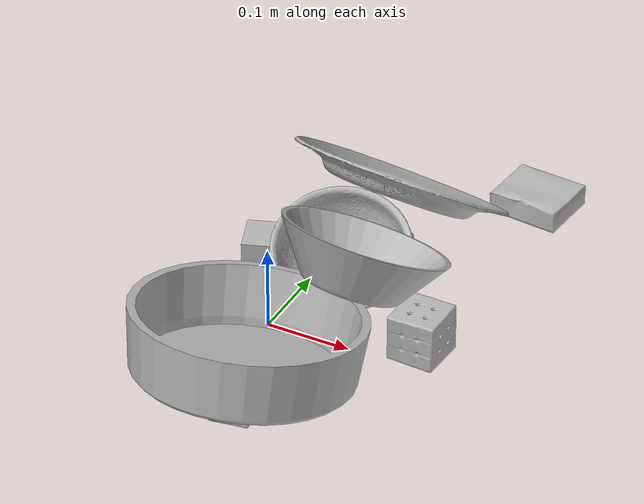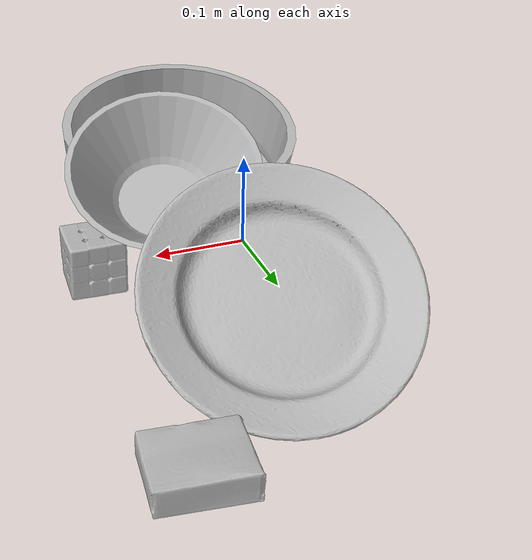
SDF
<sdf version="1.4">
  <world name="default">
    <light name="light1" type="point">
      <pose>0 0 1 0 0 0</pose>
      <diffuse>3 3 3 1</diffuse>
      <specular>3 3 3 1</specular>
    </light>
    <light name="light2" type="point">
      <pose>0 0.5 2 0 0 0</pose>
      <diffuse>1 1 1 1</diffuse>
      <specular>1 1 1 1</specular>
    </light>
    <light name="light3" type="point">
      <pose>0 0.5 2 0 0 0</pose>
      <diffuse>3 3 3 1</diffuse>
      <specular>3 3 3 1</specular>
    </light>
    <scene>
      <ambient>0.7 0.7 0.7</ambient>
    </scene>
    <model name="box1">
      <link name="link_box1">
        <collision name="default">
          <geometry>
            <mesh>
              <uri>model://sugar_box/collision_meshes/collision.obj</uri>
              <scale>0.5 0.5 0.5</scale>
            </mesh>
          </geometry>
          <surface>
            <friction>
              <ode>
                <mu>0.5</mu>
                <mu2>0.5</mu2>
              </ode>
            </friction>
          <contact>
        <ode>
            <max_vel>0</max_vel>
            <min_depth>0.0001</min_depth>
            <kp>1e8</kp>
        </ode>
    </contact></surface>
        </collision>
        <visual name="default">
          <geometry>
            <mesh>
              <uri>model://sugar_box/visual_meshes/visual.dae</uri>
              <scale>0.5 0.5 0.5</scale>
            </mesh>
          </geometry>
        </visual>
        <inertial>
          <mass>0.05968111753463745</mass>
          <pose>0.0005171863595023751 1.924554817378521e-05 -0.00018182402709499002 -0.00040462627153530444 0.0010506635220302928 0.002615378323275012</pose>
          <inertia>
            <ixx>1.2431535e-05</ixx>
            <iyy>4.0181283e-05</iyy>
            <izz>4.8101785e-05</izz>
            <ixy>0</ixy>
            <ixz>0</ixz>
            <iyz>0</iyz>
          </inertia>
        </inertial>
      </link>
      <pose>0.046940043568611145 -0.14634791016578674 0.015257083810865879 -0.00018556475415955315 0.09138209609689585 1.7193216520210175</pose>
    </model>
    <model name="box11">
      <link name="link_box11">
        <collision name="default">
          <geometry>
            <mesh>
              <uri>model://cracker_box/collision_meshes/collision.obj</uri>
              <scale>0.25 0.25 0.25</scale>
            </mesh>
          </geometry>
          <surface>
            <friction>
              <ode>
                <mu>0.5</mu>
                <mu2>0.5</mu2>
              </ode>
            </friction>
          <contact>
        <ode>
            <max_vel>0</max_vel>
            <min_depth>0.0001</min_depth>
            <kp>1e8</kp>
        </ode>
    </contact></surface>
        </collision>
        <visual name="default">
          <geometry>
            <mesh>
              <uri>model://cracker_box/visual_meshes/visual.dae</uri>
              <scale>0.25 0.25 0.25</scale>
            </mesh>
          </geometry>
        </visual>
        <inertial>
          <mass>0.04741516709327698</mass>
          <pose>0.0002366035187151283 6.358561950037256e-05 -0.0004257383698131889 -0.00031620780351981393 -0.01110649053153066 0.0025467950031323855</pose>
          <inertia>
            <ixx>7.537689e-06</ixx>
            <iyy>1.2446206e-05</iyy>
            <izz>1.7761875e-05</izz>
            <ixy>0</ixy>
            <ixz>0</ixz>
            <iyz>0</iyz>
          </inertia>
        </inertial>
      </link>
      <pose>0.04324706643819809 0.20369847118854523 0.009096325375139713 -0.014095039096380347 -0.005010213634094623 2.7485877513181127</pose>
    </model>
    <model name="box2">
      <link name="link_box2">
        <collision name="default">
          <geometry>
            <mesh>
              <uri>model://jenga/collision_meshes/collision.obj</uri>
              <scale>1.0 1.0 1.0</scale>
            </mesh>
          </geometry>
          <surface>
            <friction>
              <ode>
                <mu>0.5</mu>
                <mu2>0.5</mu2>
              </ode>
            </friction>
          <contact>
        <ode>
            <max_vel>0</max_vel>
            <min_depth>0.0001</min_depth>
            <kp>1e8</kp>
        </ode>
    </contact></surface>
        </collision>
        <visual name="default">
          <geometry>
            <mesh>
              <uri>model://jenga/visual_meshes/visual.dae</uri>
              <scale>1.0 1.0 1.0</scale>
            </mesh>
          </geometry>
        </visual>
        <inertial>
          <mass>0.17569443583488464</mass>
          <pose>-2.502855807051674e-07 -0.00010250010382151231 -4.0923401684267446e-05 0.0 -7.342153480750062e-07 0.0</pose>
          <inertia>
            <ixx>4.8618913e-05</ixx>
            <iyy>0.00032944046</iyy>
            <izz>0.0003517057</izz>
            <ixy>0</ixy>
            <ixz>0</ixz>
            <iyz>0</iyz>
          </inertia>
        </inertial>
      </link>
      <pose>-0.019529229030013084 0.13413450121879578 0.015002477914094925 -3.603812271118784e-05 -1.270964795741385e-05 -2.7917570299632697</pose>
    </model>
    <model name="box21">
      <link name="link_box21">
        <collision name="default">
          <geometry>
            <mesh>
              <uri>model://rubiks_cube/collision_meshes/collision.obj</uri>
              <scale>1.0 1.0 1.0</scale>
            </mesh>
          </geometry>
          <surface>
            <friction>
              <ode>
                <mu>0.5</mu>
                <mu2>0.5</mu2>
              </ode>
            </friction>
          <contact>
        <ode>
            <max_vel>0</max_vel>
            <min_depth>0.0001</min_depth>
            <kp>1e8</kp>
        </ode>
    </contact></surface>
        </collision>
        <visual name="default">
          <geometry>
            <mesh>
              <uri>model://rubiks_cube/visual_meshes/visual.dae</uri>
              <scale>1.0 1.0 1.0</scale>
            </mesh>
          </geometry>
        </visual>
        <inertial>
          <mass>0.16427944600582123</mass>
          <pose>2.6721041649580002e-05 5.2569666877388954e-05 -7.2643156272533815e-06 -0.05467299197426534 -0.0981400693449792 -0.034455479534688374</pose>
          <inertia>
            <ixx>9.0775415e-05</ixx>
            <iyy>9.0352085e-05</iyy>
            <izz>9.152764e-05</izz>
            <ixy>0</ixy>
            <ixz>0</ixz>
            <iyz>0</iyz>
          </inertia>
        </inertial>
      </link>
      <pose>0.17430180311203003 0.03139157593250275 0.028678834438323975 5.627199710684473e-05 5.8814271879162714e-05 3.1192356793171023</pose>
    </model>
    <model name="box3">
      <link name="link_box3">
        <collision name="default">
          <geometry>
            <mesh>
              <uri>model://gelatin_box/collision_meshes/collision.obj</uri>
              <scale>1.0 1.0 1.0</scale>
            </mesh>
          </geometry>
          <surface>
            <friction>
              <ode>
                <mu>0.5</mu>
                <mu2>0.5</mu2>
              </ode>
            </friction>
          <contact>
        <ode>
            <max_vel>0</max_vel>
            <min_depth>0.0001</min_depth>
            <kp>1e8</kp>
        </ode>
    </contact></surface>
        </collision>
        <visual name="default">
          <geometry>
            <mesh>
              <uri>model://gelatin_box/visual_meshes/visual.dae</uri>
              <scale>1.0 1.0 1.0</scale>
            </mesh>
          </geometry>
        </visual>
        <inertial>
          <mass>0.21197354793548584</mass>
          <pose>0.0004319618456065655 0.00011156872642459348 -0.0003640321083366871 -0.0010503719594585892 -0.004755818227500045 0.016440553882781303</pose>
          <inertia>
            <ixx>0.00014963602</ixx>
            <iyy>0.00010688423</iyy>
            <izz>0.00022777937</izz>
            <ixy>0</ixy>
            <ixz>0</ixz>
            <iyz>0</iyz>
          </inertia>
        </inertial>
      </link>
      <pose>0.16912057995796204 0.3460672199726105 0.015168312005698681 0.005597473464215974 -0.007304545211528524 -1.6777966226021184</pose>
    </model>
    <model name="box31">
      <link name="link_box31">
        <collision name="default">
          <geometry>
            <mesh>
              <uri>model://pudding_box/collision_meshes/collision.obj</uri>
              <scale>0.5 0.5 0.5</scale>
            </mesh>
          </geometry>
          <surface>
            <friction>
              <ode>
                <mu>0.5</mu>
                <mu2>0.5</mu2>
              </ode>
            </friction>
          <contact>
        <ode>
            <max_vel>0</max_vel>
            <min_depth>0.0001</min_depth>
            <kp>1e8</kp>
        </ode>
    </contact></surface>
        </collision>
        <visual name="default">
          <geometry>
            <mesh>
              <uri>model://pudding_box/visual_meshes/visual.dae</uri>
              <scale>0.5 0.5 0.5</scale>
            </mesh>
          </geometry>
        </visual>
        <inertial>
          <mass>0.056796859949827194</mass>
          <pose>0.00024474109522998333 0.0004033942532259971 -0.0002594413817860186 0.005213102251005844 -0.00660379641961884 0.02007983447872704</pose>
          <inertia>
            <ixx>1.605148e-05</ixx>
            <iyy>1.0799551e-05</iyy>
            <izz>2.3704206e-05</izz>
            <ixy>0</ixy>
            <ixz>0</ixz>
            <iyz>0</iyz>
          </inertia>
        </inertial>
      </link>
      <pose>-0.03092295303940773 0.0329052209854126 0.00986290629953146 0.022348551637309158 -0.011391262845078022 -2.369450305331297</pose>
    </model>
    <model name="plate1">
      <link name="link_plate1">
        <collision name="default">
          <geometry>
            <mesh>
              <uri>model://pan_tefal/collision_meshes/collision.obj</uri>
              <scale>1.0 1.0 1.0</scale>
            </mesh>
          </geometry>
          <surface>
            <friction>
              <ode>
                <mu>0.5</mu>
                <mu2>0.5</mu2>
              </ode>
            </friction>
          <contact>
        <ode>
            <max_vel>0</max_vel>
            <min_depth>0.0001</min_depth>
            <kp>1e8</kp>
        </ode>
    </contact></surface>
        </collision>
        <visual name="default">
          <geometry>
            <mesh>
              <uri>model://pan_tefal/visual_meshes/visual.dae</uri>
              <scale>1.0 1.0 1.0</scale>
            </mesh>
          </geometry>
        </visual>
        <inertial>
          <mass>1.4752264022827148</mass>
          <pose>-0.0001800210156943649 3.278951771790162e-05 -0.008514936082065105 0.0008190241607511121 -0.0003301478392365544 -0.33184922825406304</pose>
          <inertia>
            <ixx>0.010183416</ixx>
            <iyy>0.01024907</iyy>
            <izz>0.018745707</izz>
            <ixy>0</ixy>
            <ixz>0</ixz>
            <iyz>0</iyz>
          </inertia>
        </inertial>
      </link>
      <pose>0.03596792370080948 -0.1166650578379631 0.06320406496524811 0.11582955374525686 -0.18718913414686358 -2.143418444886912</pose>
    </model>
    <model name="bowl1">
      <link name="link_bowl1">
        <collision name="default">
          <geometry>
            <mesh>
              <uri>model://bowl/collision_meshes/collision.obj</uri>
              <scale>1.0 1.0 1.0</scale>
            </mesh>
          </geometry>
          <surface>
            <friction>
              <ode>
                <mu>0.5</mu>
                <mu2>0.5</mu2>
              </ode>
            </friction>
          <contact>
        <ode>
            <max_vel>0</max_vel>
            <min_depth>0.0001</min_depth>
            <kp>1e8</kp>
        </ode>
    </contact></surface>
        </collision>
        <visual name="default">
          <geometry>
            <mesh>
              <uri>model://bowl/visual_meshes/visual.dae</uri>
              <scale>1.0 1.0 1.0</scale>
            </mesh>
          </geometry>
        </visual>
        <inertial>
          <mass>0.13335108757019043</mass>
          <pose>0.00020445126574486494 -0.0010302079608663917 -0.0008042646804824471 -0.01576397865263616 0.014546905041115984 0.7140477796865206</pose>
          <inertia>
            <ixx>0.000306318</ixx>
            <iyy>0.00029947367</iyy>
            <izz>0.00051533245</izz>
            <ixy>0</ixy>
            <ixz>0</ixz>
            <iyz>0</iyz>
          </inertia>
        </inertial>
      </link>
      <pose>0.043525684624910355 0.09404285252094269 0.0444953590631485 0.4499850019822758 0.10038937680523553 0.21142330412434743</pose>
    </model>
    <model name="plate2">
      <link name="link_plate2">
        <collision name="default">
          <geometry>
            <mesh>
              <uri>model://plate/collision_meshes/collision.obj</uri>
              <scale>1.0 1.0 1.0</scale>
            </mesh>
          </geometry>
          <surface>
            <friction>
              <ode>
                <mu>0.5</mu>
                <mu2>0.5</mu2>
              </ode>
            </friction>
          <contact>
        <ode>
            <max_vel>0</max_vel>
            <min_depth>0.0001</min_depth>
            <kp>1e8</kp>
        </ode>
    </contact></surface>
        </collision>
        <visual name="default">
          <geometry>
            <mesh>
              <uri>model://plate/visual_meshes/visual.dae</uri>
              <scale>1.0 1.0 1.0</scale>
            </mesh>
          </geometry>
        </visual>
        <inertial>
          <mass>0.1753290891647339</mass>
          <pose>-0.0006044620531611145 0.0002782598021440208 -0.0010561987292021513 0.0022188066246853514 -0.003225466953145419 0.45260347799947726</pose>
          <inertia>
            <ixx>0.00082019315</ixx>
            <iyy>0.00081234827</iyy>
            <izz>0.0016041752</izz>
            <ixy>0</ixy>
            <ixz>0</ixz>
            <iyz>0</iyz>
          </inertia>
        </inertial>
      </link>
      <pose>0.0497787669301033 0.22372174263000488 0.06968621909618378 0.6207985687977723 0.03723514952848827 2.9577153650826333</pose>
    </model>
    <model name="bowl2">
      <link name="link_bowl2">
        <collision name="default">
          <geometry>
            <mesh>
              <uri>model://bowl_a/collision_meshes/collision.obj</uri>
              <scale>1.0 1.0 1.0</scale>
            </mesh>
          </geometry>
          <surface>
            <friction>
              <ode>
                <mu>0.5</mu>
                <mu2>0.5</mu2>
              </ode>
            </friction>
          <contact>
        <ode>
            <max_vel>0</max_vel>
            <min_depth>0.0001</min_depth>
            <kp>1e8</kp>
        </ode>
    </contact></surface>
        </collision>
        <visual name="default">
          <geometry>
            <mesh>
              <uri>model://bowl_a/visual_meshes/visual.dae</uri>
              <scale>1.0 1.0 1.0</scale>
            </mesh>
          </geometry>
        </visual>
        <inertial>
          <mass>0.4813200831413269</mass>
          <pose>0.0002786751138046384 4.731064836960286e-05 -0.0013765294570475817 -0.0009805320964546374 -0.0010938264681851768 -0.19124047933057892</pose>
          <inertia>
            <ixx>0.0013703406</ixx>
            <iyy>0.0013787533</iyy>
            <izz>0.0024372027</izz>
            <ixy>0</ixy>
            <ixz>0</ixz>
            <iyz>0</iyz>
          </inertia>
        </inertial>
      </link>
      <pose>0.097188800573349 0.028004644438624382 0.09730689972639084 -0.012681316642658754 0.5006922882736855 1.331638575047422</pose>
    </model>
  <physics type="ode">
      <max_contacts>50</max_contacts>
      <ode>
        <solver>
          <type>quick</type>
          <iters>75</iters>
        </solver>
        <constraints>
          <contact_max_correcting_vel>0</contact_max_correcting_vel>
          <contact_surface_layer>0</contact_surface_layer>
        </constraints>
      </ode>
    </physics></world>
</sdf>
